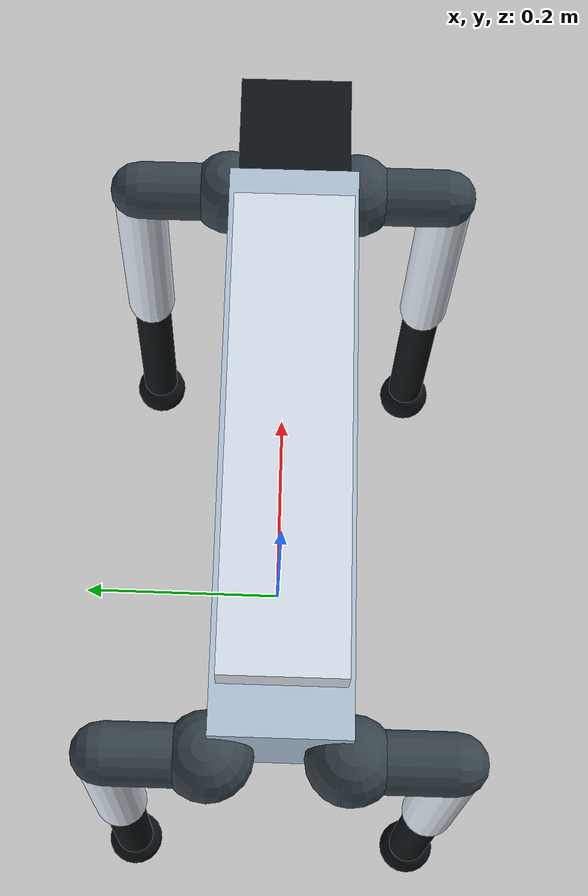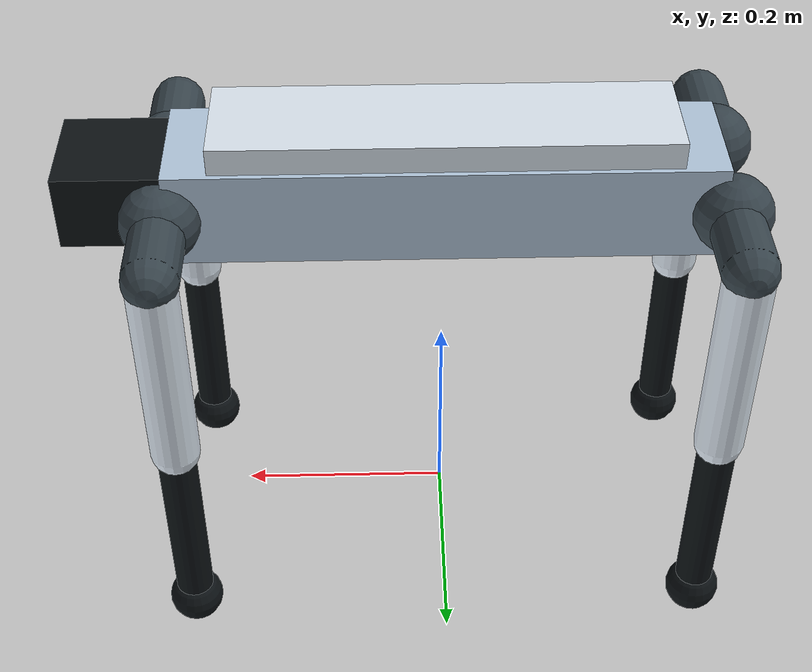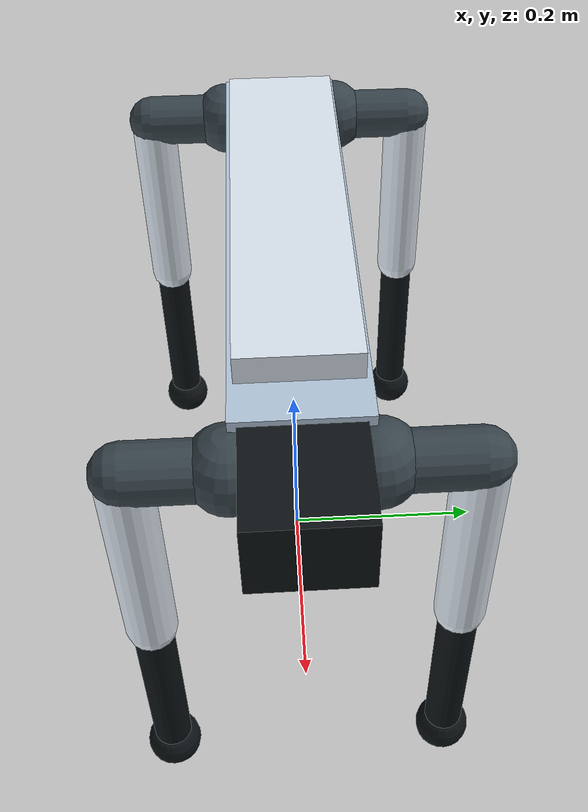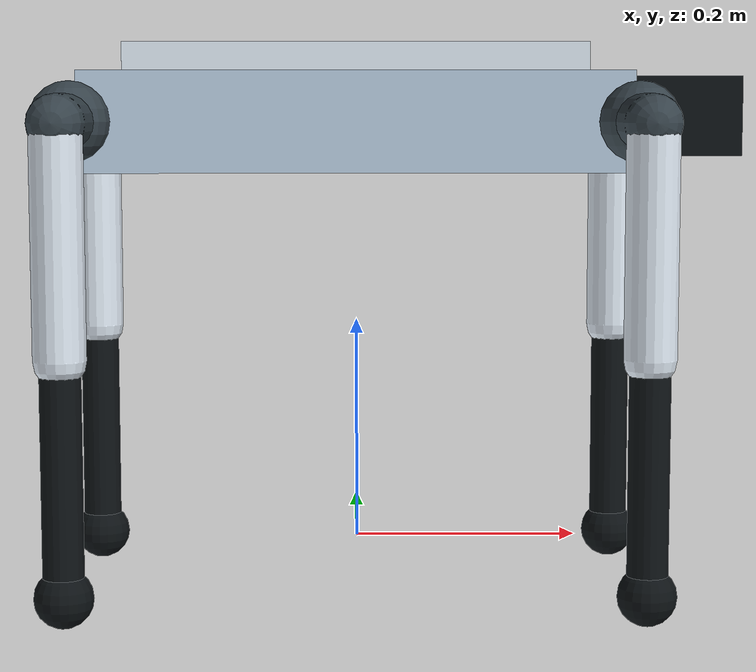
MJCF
<mujoco model="fsdog1_simplified">
  <compiler angle="radian" usethread="false"/>

  <statistic meansize="0.13" extent="1.05" center="0 0 -0.18"/>
  <default>
    <joint damping="0.001" armature="0.01" frictionloss="0.06"/>
    <geom friction="1.1 0.02 0.001" condim="3"/>
    <default class="visual">
      <geom contype="0" conaffinity="0" group="2"/>
    </default>
  </default>

  <asset>
    <material name="fsdog_body" rgba="0.70 0.78 0.86 1"/>
    <material name="fsdog_dark" rgba="0.05 0.07 0.08 1"/>
    <material name="fsdog_joint" rgba="0.22 0.27 0.30 1"/>
    <material name="fsdog_link" rgba="0.86 0.90 0.94 1"/>
  </asset>

  <worldbody>
    <body name="base" pos="0 0 0.38">
      <freejoint name="root"/>
      <inertial pos="0 0 0" mass="5.53" diaginertia="0.02656 0.13113 0.14083"/>
      <geom name="base_box" type="box" size="0.245 0.055 0.045" material="fsdog_body"/>
      <geom name="base_top" type="box" size="0.205 0.050 0.015" pos="0 0 0.055" material="fsdog_link" class="visual"/>
      <geom name="base_nose" type="box" size="0.055 0.048 0.035" pos="0.285 0 0.005" material="fsdog_dark"/>

      <body name="fl_hip" pos="0.249 0.055 0">
        <inertial pos="0 0 0" mass="0.57" diaginertia="0.00054 0.00074 0.00059"/>
        <joint name="fl_hip_joint" axis="1 0 0" range="-0.55 0.55" actuatorfrcrange="-17 17"/>
        <geom type="sphere" size="0.036" material="fsdog_joint"/>
        <geom type="capsule" fromto="0 0 0 0 0.0805 0" size="0.025" material="fsdog_joint"/>
        <body name="fl_thigh" pos="0 0.0805 0">
          <inertial pos="0 0 -0.09" mass="1.07" diaginertia="0.00859 0.00888 0.00093"/>
          <joint name="fl_thigh_joint" axis="0 1 0" range="-2.4 2.4" actuatorfrcrange="-17 17"/>
          <geom type="capsule" fromto="0 0 0 0 0 -0.20" size="0.023" material="fsdog_link"/>
          <body name="fl_calf" pos="0 0 -0.20">
            <inertial pos="0 0 -0.10" mass="0.34" diaginertia="0.00191 0.00215 0.00026"/>
            <joint name="fl_calf_joint" axis="0 -1 0" range="-0.2 5.3" actuatorfrcrange="-17 17"/>
            <geom type="capsule" fromto="0 0 0 0 0 -0.205" size="0.018" material="fsdog_dark"/>
            <geom name="fl_foot" type="sphere" pos="0 0 -0.205" size="0.026" material="fsdog_dark"/>
          </body>
        </body>
      </body>

      <body name="fr_hip" pos="0.249 -0.055 0">
        <inertial pos="0 0 0" mass="0.57" diaginertia="0.00054 0.00074 0.00059"/>
        <joint name="fr_hip_joint" axis="1 0 0" range="-0.55 0.55" actuatorfrcrange="-17 17"/>
        <geom type="sphere" size="0.036" material="fsdog_joint"/>
        <geom type="capsule" fromto="0 0 0 0 -0.0805 0" size="0.025" material="fsdog_joint"/>
        <body name="fr_thigh" pos="0 -0.0805 0">
          <inertial pos="0 0 -0.09" mass="1.07" diaginertia="0.00859 0.00888 0.00093"/>
          <joint name="fr_thigh_joint" axis="0 1 0" range="-2.4 2.4" actuatorfrcrange="-17 17"/>
          <geom type="capsule" fromto="0 0 0 0 0 -0.20" size="0.023" material="fsdog_link"/>
          <body name="fr_calf" pos="0 0 -0.20">
            <inertial pos="0 0 -0.10" mass="0.34" diaginertia="0.00191 0.00215 0.00026"/>
            <joint name="fr_calf_joint" axis="0 -1 0" range="-0.2 5.3" actuatorfrcrange="-17 17"/>
            <geom type="capsule" fromto="0 0 0 0 0 -0.205" size="0.018" material="fsdog_dark"/>
            <geom name="fr_foot" type="sphere" pos="0 0 -0.205" size="0.026" material="fsdog_dark"/>
          </body>
        </body>
      </body>

      <body name="rl_hip" pos="-0.251 0.055 0">
        <inertial pos="0 0 0" mass="0.57" diaginertia="0.00054 0.00074 0.00059"/>
        <joint name="rl_hip_joint" axis="1 0 0" range="-0.55 0.55" actuatorfrcrange="-17 17"/>
        <geom type="sphere" size="0.036" material="fsdog_joint"/>
        <geom type="capsule" fromto="0 0 0 0 0.0805 0" size="0.025" material="fsdog_joint"/>
        <body name="rl_thigh" pos="0 0.0805 0">
          <inertial pos="0 0 -0.09" mass="1.07" diaginertia="0.00859 0.00888 0.00093"/>
          <joint name="rl_thigh_joint" axis="0 1 0" range="-2.4 2.4" actuatorfrcrange="-17 17"/>
          <geom type="capsule" fromto="0 0 0 0 0 -0.20" size="0.023" material="fsdog_link"/>
          <body name="rl_calf" pos="0 0 -0.20">
            <inertial pos="0 0 -0.10" mass="0.34" diaginertia="0.00191 0.00215 0.00026"/>
            <joint name="rl_calf_joint" axis="0 -1 0" range="-0.2 5.3" actuatorfrcrange="-17 17"/>
            <geom type="capsule" fromto="0 0 0 0 0 -0.205" size="0.018" material="fsdog_dark"/>
            <geom name="rl_foot" type="sphere" pos="0 0 -0.205" size="0.026" material="fsdog_dark"/>
          </body>
        </body>
      </body>

      <body name="rr_hip" pos="-0.251 -0.055 0">
        <inertial pos="0 0 0" mass="0.57" diaginertia="0.00054 0.00074 0.00059"/>
        <joint name="rr_hip_joint" axis="1 0 0" range="-0.55 0.55" actuatorfrcrange="-17 17"/>
        <geom type="sphere" size="0.036" material="fsdog_joint"/>
        <geom type="capsule" fromto="0 0 0 0 -0.0805 0" size="0.025" material="fsdog_joint"/>
        <body name="rr_thigh" pos="0 -0.0805 0">
          <inertial pos="0 0 -0.09" mass="1.07" diaginertia="0.00859 0.00888 0.00093"/>
          <joint name="rr_thigh_joint" axis="0 1 0" range="-2.4 2.4" actuatorfrcrange="-17 17"/>
          <geom type="capsule" fromto="0 0 0 0 0 -0.20" size="0.023" material="fsdog_link"/>
          <body name="rr_calf" pos="0 0 -0.20">
            <inertial pos="0 0 -0.10" mass="0.34" diaginertia="0.00191 0.00215 0.00026"/>
            <joint name="rr_calf_joint" axis="0 -1 0" range="-0.2 5.3" actuatorfrcrange="-17 17"/>
            <geom type="capsule" fromto="0 0 0 0 0 -0.205" size="0.018" material="fsdog_dark"/>
            <geom name="rr_foot" type="sphere" pos="0 0 -0.205" size="0.026" material="fsdog_dark"/>
          </body>
        </body>
      </body>
    </body>
  </worldbody>

  <actuator>
    <motor name="fl_hip" joint="fl_hip_joint"/>
    <motor name="fl_thigh" joint="fl_thigh_joint"/>
    <motor name="fl_calf" joint="fl_calf_joint"/>
    <motor name="fr_hip" joint="fr_hip_joint"/>
    <motor name="fr_thigh" joint="fr_thigh_joint"/>
    <motor name="fr_calf" joint="fr_calf_joint"/>
    <motor name="rl_hip" joint="rl_hip_joint"/>
    <motor name="rl_thigh" joint="rl_thigh_joint"/>
    <motor name="rl_calf" joint="rl_calf_joint"/>
    <motor name="rr_hip" joint="rr_hip_joint"/>
    <motor name="rr_thigh" joint="rr_thigh_joint"/>
    <motor name="rr_calf" joint="rr_calf_joint"/>
  </actuator>
</mujoco>
